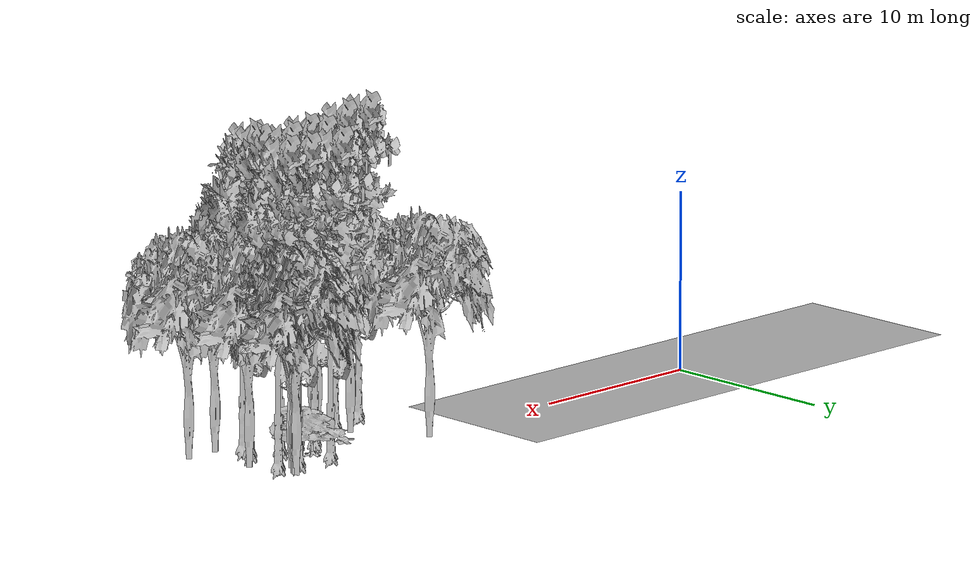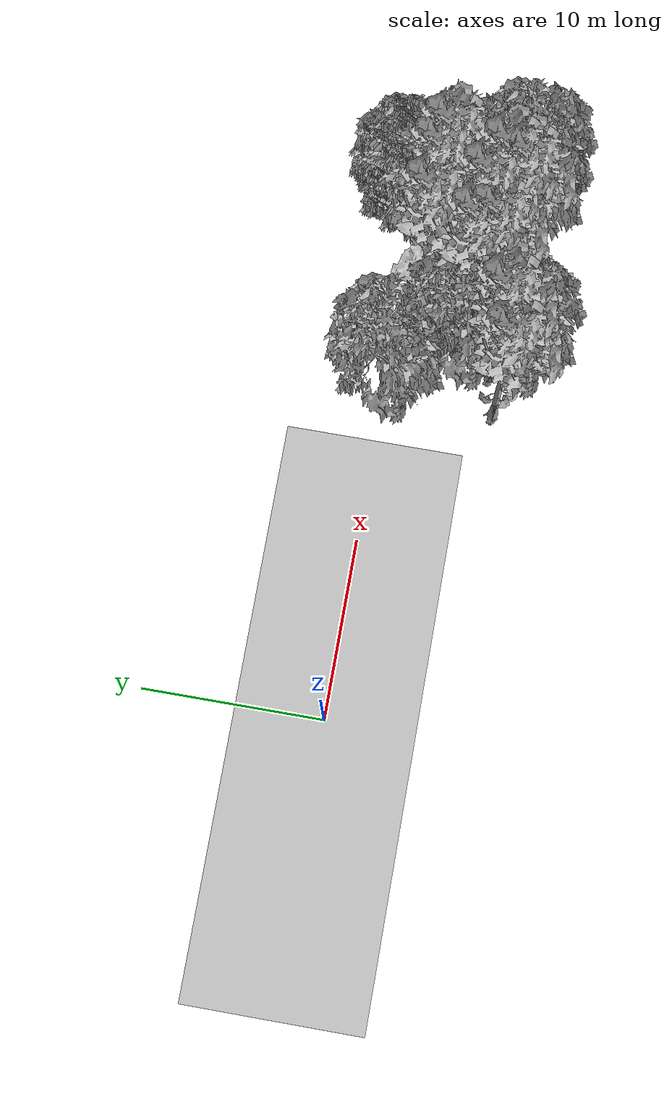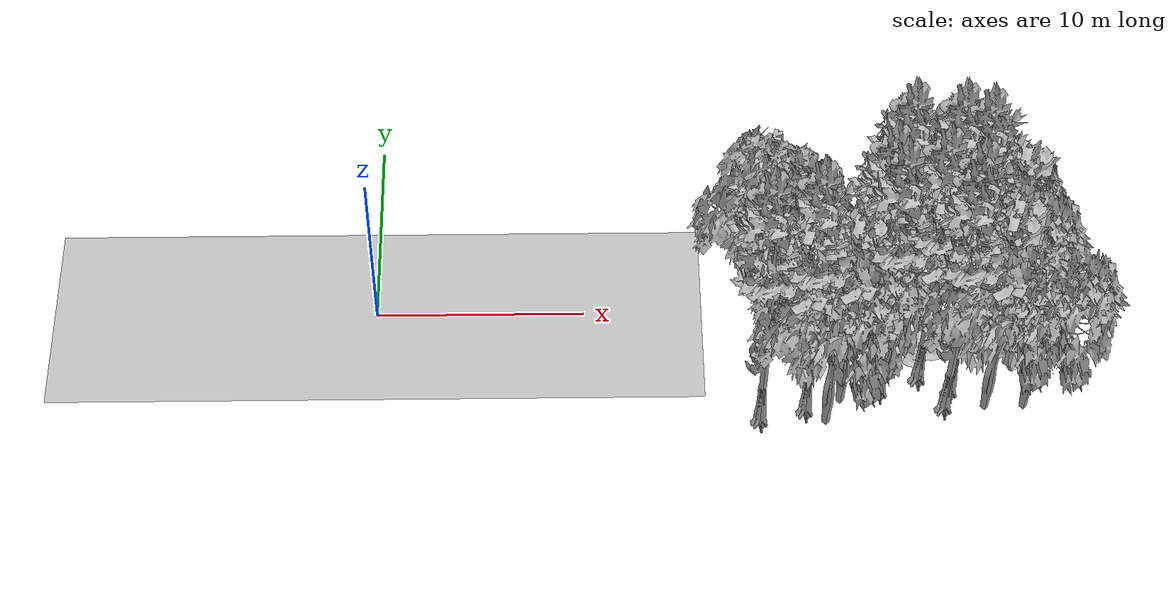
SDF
<sdf version="1.7">
 <world name="default">
  <model name="ground_plane">
   <static>1</static>
   <link name="link">
    <collision name="collision">
     <pose>-50 0 0 0 -0 0</pose>
     <geometry><plane><normal>0 0 1</normal><size>100 100</size></plane></geometry>
     <surface><contact><ode><min_depth>0.01</min_depth><max_vel>0</max_vel></ode></contact></surface>
    </collision>
    <visual name="grass">
     <cast_shadows>0</cast_shadows>
     <geometry>
      <mesh>
       <scale>0.5814285714285714 0.18142857142857144 0.1</scale>
       <uri>file://grass_plane/meshes/grass_plane.dae</uri>
      </mesh>
     </geometry>
    </visual>
   </link>
  </model>
  <model name="Tree 2">
   <static>1</static>
   <pose>24.65917798859826 -1.2980579722668804 0 1.57079 -0 0</pose>
   <link name="link">
    <collision name="collision">
     <geometry><mesh><scale>3.5 5 3.5</scale><uri>model://tree_9/meshes/tree_9.obj</uri></mesh></geometry>
    </collision>
    <visual name="visual">
     <geometry><mesh><scale>3.5 5 3.5</scale><uri>model://tree_9/meshes/tree_9.obj</uri></mesh></geometry>
    </visual>
   </link>
  </model>
  <model name="Tree 4">
   <static>1</static>
   <pose>29.403178628892164 -2.2712187707758407 0 1.57079 -0 0</pose>
   <link name="link">
    <collision name="collision">
     <geometry><mesh><scale>3.5 5 3.5</scale><uri>model://tree_2/meshes/tree_2.obj</uri></mesh></geometry>
    </collision>
    <visual name="visual">
     <geometry><mesh><scale>3.5 5 3.5</scale><uri>model://tree_2/meshes/tree_2.obj</uri></mesh></geometry>
    </visual>
   </link>
  </model>
  <model name="Tree 53">
   <static>1</static>
   <pose>28.547581540189995 0.18442061669200882 0 1.57079 -0 0</pose>
   <link name="link">
    <collision name="collision">
     <geometry><mesh><scale>3.5 5 3.5</scale><uri>model://tree_2/meshes/tree_2.obj</uri></mesh></geometry>
    </collision>
    <visual name="visual">
     <geometry><mesh><scale>3.5 5 3.5</scale><uri>model://tree_2/meshes/tree_2.obj</uri></mesh></geometry>
    </visual>
   </link>
  </model>
  <model name="Tree 59">
   <static>1</static>
   <pose>28.80413271990274 -5.604586312637686 0 1.57079 -0 0</pose>
   <link name="link">
    <collision name="collision">
     <geometry><mesh><scale>3.5 5 3.5</scale><uri>model://tree_2/meshes/tree_2.obj</uri></mesh></geometry>
    </collision>
    <visual name="visual">
     <geometry><mesh><scale>3.5 5 3.5</scale><uri>model://tree_2/meshes/tree_2.obj</uri></mesh></geometry>
    </visual>
   </link>
  </model>
  <model name="Tree 80">
   <static>1</static>
   <pose>27.988934160277026 -1.6826095637588665 0 1.57079 -0 0</pose>
   <link name="link">
    <collision name="collision">
     <geometry><mesh><scale>3.5 5 3.5</scale><uri>model://tree_9/meshes/tree_9.obj</uri></mesh></geometry>
    </collision>
    <visual name="visual">
     <geometry><mesh><scale>3.5 5 3.5</scale><uri>model://tree_9/meshes/tree_9.obj</uri></mesh></geometry>
    </visual>
   </link>
  </model>
  <model name="Tree 82">
   <static>1</static>
   <pose>21.182699980330952 -3.4700498331154623 0 1.57079 -0 0</pose>
   <link name="link">
    <collision name="collision">
     <geometry><mesh><scale>3.5 5 3.5</scale><uri>model://tree_2/meshes/tree_2.obj</uri></mesh></geometry>
    </collision>
    <visual name="visual">
     <geometry><mesh><scale>3.5 5 3.5</scale><uri>model://tree_2/meshes/tree_2.obj</uri></mesh></geometry>
    </visual>
   </link>
  </model>
  <model name="Tree 112">
   <static>1</static>
   <pose>28.67668734319841 0.5219902579202831 0 1.57079 -0 0</pose>
   <link name="link">
    <collision name="collision">
     <geometry><mesh><scale>3.5 5 3.5</scale><uri>model://tree_2/meshes/tree_2.obj</uri></mesh></geometry>
    </collision>
    <visual name="visual">
     <geometry><mesh><scale>3.5 5 3.5</scale><uri>model://tree_2/meshes/tree_2.obj</uri></mesh></geometry>
    </visual>
   </link>
  </model>
  <model name="Tree 117">
   <static>1</static>
   <pose>26.84274657159453 -1.365270292332525 0 1.57079 -0 0</pose>
   <link name="link">
    <collision name="collision">
     <geometry><mesh><scale>3.5 5 3.5</scale><uri>model://tree_9/meshes/tree_9.obj</uri></mesh></geometry>
    </collision>
    <visual name="visual">
     <geometry><mesh><scale>3.5 5 3.5</scale><uri>model://tree_9/meshes/tree_9.obj</uri></mesh></geometry>
    </visual>
   </link>
  </model>
  <model name="Tree 162">
   <static>1</static>
   <pose>21.985562898552317 -5.172034824971467 0 1.57079 -0 0</pose>
   <link name="link">
    <collision name="collision">
     <geometry><mesh><scale>3.5 5 3.5</scale><uri>model://tree_2/meshes/tree_2.obj</uri></mesh></geometry>
    </collision>
    <visual name="visual">
     <geometry><mesh><scale>3.5 5 3.5</scale><uri>model://tree_2/meshes/tree_2.obj</uri></mesh></geometry>
    </visual>
   </link>
  </model>
  <model name="Tree 164">
   <static>1</static>
   <pose>25.559855824191146 -1.7592240089559734 0 1.57079 -0 0</pose>
   <link name="link">
    <collision name="collision">
     <geometry><mesh><scale>4 2.5 4</scale><uri>model://tree_1/meshes/tree_1.obj</uri></mesh></geometry>
    </collision>
    <visual name="visual">
     <geometry><mesh><scale>4 2.5 4</scale><uri>model://tree_1/meshes/tree_1.obj</uri></mesh></geometry>
    </visual>
   </link>
  </model>
  <model name="Tree 175">
   <static>1</static>
   <pose>18.226700883681985 -6.139528707341697 0 1.57079 -0 0</pose>
   <link name="link">
    <collision name="collision">
     <geometry><mesh><scale>3.5 5 3.5</scale><uri>model://tree_9/meshes/tree_9.obj</uri></mesh></geometry>
    </collision>
    <visual name="visual">
     <geometry><mesh><scale>3.5 5 3.5</scale><uri>model://tree_9/meshes/tree_9.obj</uri></mesh></geometry>
    </visual>
   </link>
  </model>
  <model name="Tree 254">
   <static>1</static>
   <pose>28.651487499210504 0.41153962514397335 0 1.57079 -0 0</pose>
   <link name="link">
    <collision name="collision">
     <geometry><mesh><scale>3.5 5 3.5</scale><uri>model://tree_2/meshes/tree_2.obj</uri></mesh></geometry>
    </collision>
    <visual name="visual">
     <geometry><mesh><scale>3.5 5 3.5</scale><uri>model://tree_2/meshes/tree_2.obj</uri></mesh></geometry>
    </visual>
   </link>
  </model>
  <model name="Tree 270">
   <static>1</static>
   <pose>25.884361646838997 -3.842357336259692 0 1.57079 -0 0</pose>
   <link name="link">
    <collision name="collision">
     <geometry><mesh><scale>3.5 5 3.5</scale><uri>model://tree_9/meshes/tree_9.obj</uri></mesh></geometry>
    </collision>
    <visual name="visual">
     <geometry><mesh><scale>3.5 5 3.5</scale><uri>model://tree_9/meshes/tree_9.obj</uri></mesh></geometry>
    </visual>
   </link>
  </model>
  <model name="Tree 272">
   <static>1</static>
   <pose>20.399139989654245 -5.6131797927819935 0 1.57079 -0 0</pose>
   <link name="link">
    <collision name="collision">
     <geometry><mesh><scale>3.5 5 3.5</scale><uri>model://tree_9/meshes/tree_9.obj</uri></mesh></geometry>
    </collision>
    <visual name="visual">
     <geometry><mesh><scale>3.5 5 3.5</scale><uri>model://tree_9/meshes/tree_9.obj</uri></mesh></geometry>
    </visual>
   </link>
  </model>
  <model name="Tree 287">
   <static>1</static>
   <pose>27.94186195327849 -0.6403872756055478 0 1.57079 -0 0</pose>
   <link name="link">
    <collision name="collision">
     <geometry><mesh><scale>3.5 5 3.5</scale><uri>model://tree_2/meshes/tree_2.obj</uri></mesh></geometry>
    </collision>
    <visual name="visual">
     <geometry><mesh><scale>3.5 5 3.5</scale><uri>model://tree_2/meshes/tree_2.obj</uri></mesh></geometry>
    </visual>
   </link>
  </model>
  <model name="Tree 288">
   <static>1</static>
   <pose>18.777412286924076 0.040918578373121406 0 1.57079 -0 0</pose>
   <link name="link">
    <collision name="collision">
     <geometry><mesh><scale>3.5 5 3.5</scale><uri>model://tree_2/meshes/tree_2.obj</uri></mesh></geometry>
    </collision>
    <visual name="visual">
     <geometry><mesh><scale>3.5 5 3.5</scale><uri>model://tree_2/meshes/tree_2.obj</uri></mesh></geometry>
    </visual>
   </link>
  </model>
  <model name="Tree 354">
   <static>1</static>
   <pose>23.993853609570394 -4.585182532059109 0 1.57079 -0 0</pose>
   <link name="link">
    <collision name="collision">
     <geometry><mesh><scale>3.5 5 3.5</scale><uri>model://tree_9/meshes/tree_9.obj</uri></mesh></geometry>
    </collision>
    <visual name="visual">
     <geometry><mesh><scale>3.5 5 3.5</scale><uri>model://tree_9/meshes/tree_9.obj</uri></mesh></geometry>
    </visual>
   </link>
  </model>
  <model name="Tree 375">
   <static>1</static>
   <pose>26.99574888921987 -5.523693236755175 0 1.57079 -0 0</pose>
   <link name="link">
    <collision name="collision">
     <geometry><mesh><scale>3.5 5 3.5</scale><uri>model://tree_9/meshes/tree_9.obj</uri></mesh></geometry>
    </collision>
    <visual name="visual">
     <geometry><mesh><scale>3.5 5 3.5</scale><uri>model://tree_9/meshes/tree_9.obj</uri></mesh></geometry>
    </visual>
   </link>
  </model>
  <model name="Tree 430">
   <static>1</static>
   <pose>27.344849549653404 -4.5935093253364965 0 1.57079 -0 0</pose>
   <link name="link">
    <collision name="collision">
     <geometry><mesh><scale>3.5 5 3.5</scale><uri>model://tree_9/meshes/tree_9.obj</uri></mesh></geometry>
    </collision>
    <visual name="visual">
     <geometry><mesh><scale>3.5 5 3.5</scale><uri>model://tree_9/meshes/tree_9.obj</uri></mesh></geometry>
    </visual>
   </link>
  </model>
  <model name="Tree 443">
   <static>1</static>
   <pose>30.63667995267312 -5.5764485725944475 0 1.57079 -0 0</pose>
   <link name="link">
    <collision name="collision">
     <geometry><mesh><scale>3.5 5 3.5</scale><uri>model://tree_2/meshes/tree_2.obj</uri></mesh></geometry>
    </collision>
    <visual name="visual">
     <geometry><mesh><scale>3.5 5 3.5</scale><uri>model://tree_2/meshes/tree_2.obj</uri></mesh></geometry>
    </visual>
   </link>
  </model>
  <model name="Tree 510">
   <static>1</static>
   <pose>23.62908542356591 -3.648892784384799 0 1.57079 -0 0</pose>
   <link name="link">
    <collision name="collision">
     <geometry><mesh><scale>3.5 5 3.5</scale><uri>model://tree_9/meshes/tree_9.obj</uri></mesh></geometry>
    </collision>
    <visual name="visual">
     <geometry><mesh><scale>3.5 5 3.5</scale><uri>model://tree_9/meshes/tree_9.obj</uri></mesh></geometry>
    </visual>
   </link>
  </model>
  <model name="Tree 511">
   <static>1</static>
   <pose>21.234855210303508 -6.356963686541816 0 1.57079 -0 0</pose>
   <link name="link">
    <collision name="collision">
     <geometry><mesh><scale>3.5 5 3.5</scale><uri>model://tree_2/meshes/tree_2.obj</uri></mesh></geometry>
    </collision>
    <visual name="visual">
     <geometry><mesh><scale>3.5 5 3.5</scale><uri>model://tree_2/meshes/tree_2.obj</uri></mesh></geometry>
    </visual>
   </link>
  </model>
 </world>
</sdf>
